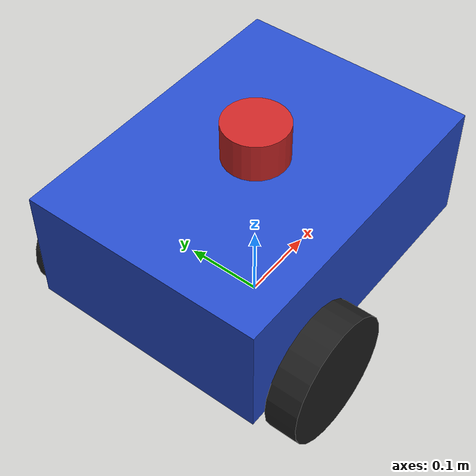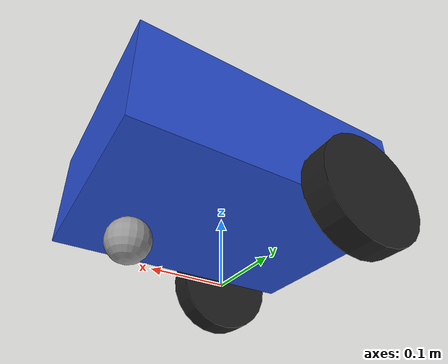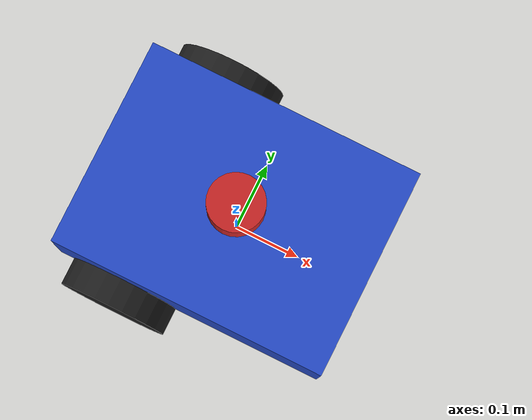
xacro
<?xml version="1.0"?>
<robot xmlns:xacro="http://www.ros.org/wiki/xacro">

  <xacro:property name="base_length"    value="0.40"/>
  <xacro:property name="base_width"     value="0.30"/>
  <xacro:property name="base_height"    value="0.15"/>

  <xacro:property name="wheel_radius"   value="0.08"/>
  <xacro:property name="wheel_length"   value="0.04"/>

  <xacro:property name="caster_radius"  value="0.03"/>

  <xacro:property name="lidar_radius"   value="0.04"/>
  <xacro:property name="lidar_length"   value="0.05"/>

  <link name="base_footprint"/>

  <joint name="base_footprint_joint" type="fixed">
    <parent link="base_footprint"/>
    <child  link="base_link"/>
    <origin xyz="0 0 ${wheel_radius}" rpy="0 0 0"/>
  </joint>

  <link name="base_link">
    <visual>
      <geometry>
        <box size="${base_length} ${base_width} ${base_height}"/>
      </geometry>
      <origin xyz="0 0 ${base_height/2.0}" rpy="0 0 0"/>
      <material name="blue"/>
    </visual>
    <collision>
      <geometry>
        <box size="${base_length} ${base_width} ${base_height}"/>
      </geometry>
      <origin xyz="0 0 ${base_height/2.0}" rpy="0 0 0"/>
    </collision>
    <xacro:box_inertia
      m="5.0"
      l="${base_length}" w="${base_width}" h="${base_height}"
      xyz="0 0 ${base_height/2.0}"
      rpy="0 0 0"/>
  </link>

  <xacro:macro name="wheel_link" params="name">
    <link name="${name}">
      <visual>
        <geometry>
          <cylinder radius="${wheel_radius}" length="${wheel_length}"/>
        </geometry>
        <origin xyz="0 0 0" rpy="${pi/2.0} 0 0"/>
        <material name="black"/>
      </visual>
      <collision>
        <geometry>
          <cylinder radius="${wheel_radius}" length="${wheel_length}"/>
        </geometry>
        <origin xyz="0 0 0" rpy="${pi/2.0} 0 0"/>
      </collision>
      <xacro:cylinder_inertia
        m="0.5"
        r="${wheel_radius}" h="${wheel_length}"
        xyz="0 0 0"
        rpy="${pi/2.0} 0 0"/>
    </link>
  </xacro:macro>

  <xacro:wheel_link name="left_wheel_link"/>
  <joint name="base_left_wheel_joint" type="continuous">
    <parent link="base_link"/>
    <child  link="left_wheel_link"/>
    <origin xyz="${-base_length/4.0} ${(base_width/2.0) + (wheel_length/2.0)} 0" rpy="0 0 0"/>
    <axis xyz="0 1 0"/>
  </joint>

  <xacro:wheel_link name="right_wheel_link"/>
  <joint name="base_right_wheel_joint" type="continuous">
    <parent link="base_link"/>
    <child  link="right_wheel_link"/>
    <origin xyz="${-base_length/4.0} ${-(base_width/2.0) - (wheel_length/2.0)} 0" rpy="0 0 0"/>
    <axis xyz="0 1 0"/>
  </joint>

  <link name="caster_wheel_link">
    <visual>
      <geometry>
        <sphere radius="${caster_radius}"/>
      </geometry>
      <origin xyz="0 0 0" rpy="0 0 0"/>
      <material name="gray"/>
    </visual>
    <collision>
      <geometry>
        <sphere radius="${caster_radius}"/>
      </geometry>
      <origin xyz="0 0 0" rpy="0 0 0"/>
    </collision>
    <xacro:sphere_inertia
      m="0.2"
      r="${caster_radius}"
      xyz="0 0 0"
      rpy="0 0 0"/>
  </link>

  <joint name="caster_wheel_joint" type="fixed">
    <parent link="base_link"/>
    <child  link="caster_wheel_link"/>
    <!-- Place at front, touching ground: base_height=0 plane, drop by wheel_radius-caster_radius -->
    <origin xyz="${base_length/3.0} 0 ${-(wheel_radius - caster_radius)}" rpy="0 0 0"/>
  </joint>

  <!-- ========== LIDAR SENSOR LINK ========== -->
  <link name="lidar_link">
    <visual>
      <geometry>
        <cylinder radius="${lidar_radius}" length="${lidar_length}"/>
      </geometry>
      <origin xyz="0 0 0" rpy="0 0 0"/>
      <material name="red"/>
    </visual>
    <collision>
      <geometry>
        <cylinder radius="${lidar_radius}" length="${lidar_length}"/>
      </geometry>
      <origin xyz="0 0 0" rpy="0 0 0"/>
    </collision>
    <xacro:cylinder_inertia
      m="0.1"
      r="${lidar_radius}" h="${lidar_length}"
      xyz="0 0 0"
      rpy="0 0 0"/>
  </link>

  <joint name="lidar_joint" type="fixed">
    <parent link="base_link"/>
    <child  link="lidar_link"/>
    <!-- On top of robot body, centered -->
    <origin xyz="0 0 ${base_height + lidar_length/2.0}" rpy="0 0 0"/>
  </joint>

</robot>
